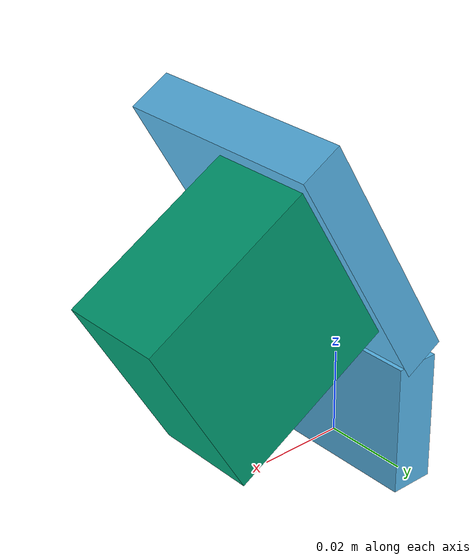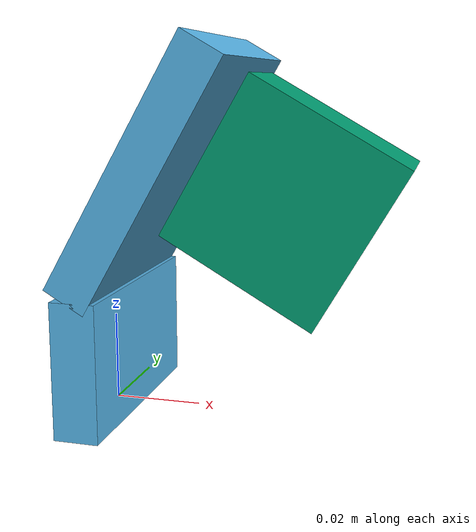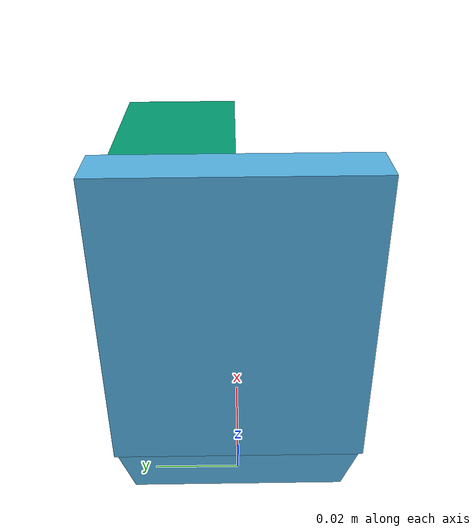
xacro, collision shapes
<?xml version="1.0"?>
<robot name="ARX5 Component $(arg type)" xmlns:xacro="http://www.ros.org/wiki/xacro">
	<xacro:arg name="type" default="d405"/>
	<xacro:arg name="name" default=""/>
	<xacro:arg name="collider" default="simple"/>
	<xacro:property name="PI" value="3.1415926535897931"/>
	<xacro:property name="prefix" value="${'$(arg name)' + '_' if '$(arg name)' else ''}"/>

	<xacro:if value="${'$(arg type)' == 'd405'}">
		<xacro:include filename="$(find arx5_description)/xacro/components/camera.xacro"/>
		<link name="${prefix}base_link"/>
		<xacro:arx_camera_component prefix="${prefix}" camera="d405" collider="$(arg collider)"/>
		<joint name="${prefix}camera_support_fixed" type="fixed">
			<parent link="${prefix}base_link"/>
			<child link="${prefix}camera_support"/>
		</joint>
	</xacro:if>

	<xacro:if value="${'$(arg type)' == 'd435'}">
		<xacro:include filename="$(find arx5_description)/xacro/components/camera.xacro"/>
		<link name="${prefix}base_link"/>
		<xacro:arx_camera_component prefix="${prefix}" camera="d435" collider="$(arg collider)"/>
		<joint name="${prefix}camera_support_fixed" type="fixed">
			<parent link="${prefix}base_link"/>
			<child link="${prefix}camera_support"/>
		</joint>
	</xacro:if>

	<xacro:if value="${'$(arg type)' == 'r5_ee'}">
		<xacro:include filename="$(find arx5_description)/xacro/R5.xacro"/>
		<xacro:R5 name="$(arg name)" collider="$(arg collider)" with_gripper="false"/>
	</xacro:if>

	<xacro:if value="${'$(arg type)' == 'x5_ee'}">
		<xacro:include filename="$(find arx5_description)/xacro/X5.xacro"/>
		<xacro:X5 name="$(arg name)" collider="$(arg collider)" with_gripper="false"/>
	</xacro:if>

	<xacro:if value="${'$(arg type)' == 'ac1_ee'}">
		<xacro:include filename="$(find arx5_description)/xacro/X5_ac1.xacro"/>
		<xacro:X5 name="$(arg name)" collider="$(arg collider)" with_gripper="false"/>
	</xacro:if>

	<xacro:if value="${'$(arg type)' == 'agilex_ee'}">
		<xacro:include filename="$(find arx5_description)/xacro/R5.xacro"/>
		<xacro:R5 name="$(arg name)" style="agilex" collider="$(arg collider)" with_gripper="false"/>
	</xacro:if>
</robot>

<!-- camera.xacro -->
<robot xmlns:xacro="http://www.ros.org/wiki/xacro">
    <xacro:macro name="arx_camera_component" params="prefix camera:=d405 collider:=simple">
        <xacro:if value="${camera == 'none'}">
            <link name="${prefix}camera_support"/>
        </xacro:if>

        <xacro:if value="${camera == 'd405'}">
            <link name="${prefix}camera_support">
                <visual>
                    <geometry>
                        <mesh filename="file://$(find arx5_description)/meshes/camera_stand/stand_d405.glb"/>
                    </geometry>
                </visual>
                <xacro:if value="${collider == 'convex'}">
                    <collision>
                        <geometry>
                            <mesh filename="file://$(find arx5_description)/meshes/camera_stand/stand_d405.glb"/>
                        </geometry>
                    </collision>
                </xacro:if>
                <xacro:if value="${collider == 'simple'}">
                    <collision name="simple_d405_1">
                        <origin xyz="0.0142 0 0.055" rpy="0 ${PI/6} 0"/>
                        <geometry>
                            <box size="0.01 0.05 0.06"/>
                        </geometry>
                    </collision>
                    <collision name="simple_d405_2">
                        <origin xyz="0.001 0 0.014" rpy="0 0 0"/>
                        <geometry>
                            <box size="0.01 0.05 0.03"/>
                        </geometry>
                    </collision>
                </xacro:if>
            </link>
            <link name="${prefix}camera">
                <visual>
                    <geometry>
                        <mesh filename="file://$(find sensor_models)/meshes/realsense/d405.glb"/>
                    </geometry>
                </visual>
                <xacro:if value="${collider == 'convex'}">
                    <collision>
                        <geometry>
                            <mesh filename="file://$(find sensor_models)/meshes/realsense/d405.glb"/>
                        </geometry>
                    </collision>
                </xacro:if>
                <xacro:if value="${collider == 'simple'}">
                    <collision name="simple_d405camera">
                        <origin xyz="-0.0115 0 0" rpy="0 0 0"/>
                        <geometry>
                            <box size="0.0231 0.0421 0.042"/>
                        </geometry>
                    </collision>
                </xacro:if>
            </link>
            <joint name="${prefix}camera_fixed" type="fixed">
                <origin xyz="0.0385 0 0.0475" rpy="-2.093 0 -1.5708"/>
                <parent link="${prefix}camera_support"/>
                <child link="${prefix}camera"/>
            </joint>
        </xacro:if>

        <xacro:if value="${camera == 'd435'}">
            <link name="${prefix}camera_support">
                <visual>
                    <geometry>
                        <mesh filename="file://$(find arx5_description)/meshes/camera_stand/stand_d435.glb"/>
                    </geometry>
                </visual>
                <xacro:if value="${collider == 'convex'}">
                    <collision>
                        <geometry>
                            <mesh filename="file://$(find arx5_description)/meshes/camera_stand/stand_d435.glb"/>
                        </geometry>
                    </collision>
                </xacro:if>
                <xacro:if value="${collider == 'simple'}">
                    <collision name="simple_d435">
                        <origin xyz="0.001 0 0.014" rpy="0 0 0"/>
                        <geometry>
                            <box size="0.01 0.05 0.03"/>
                        </geometry>
                    </collision>
                </xacro:if>
            </link>
            <link name="${prefix}camera">
                <visual>
                    <geometry>
                        <mesh filename="file://$(find sensor_models)/meshes/d435/d435.obj"/>
                    </geometry>
                </visual>
                <xacro:if value="${collider == 'convex'}">
                    <collision>
                        <geometry>
                            <mesh filename="file://$(find sensor_models)/meshes/d435/d435.obj"/>
                        </geometry>
                    </collision>
                </xacro:if>
                <xacro:if value="${collider == 'simple'}">
                    <collision name="simple_d435camera">
                        <origin xyz="-0.0125 0 0" rpy="0 0 0"/>
                        <geometry>
                            <box size="0.0251 0.0899 0.025"/>
                        </geometry>
                    </collision>
                </xacro:if>
            </link>
            <joint name="${prefix}camera_fixed" type="fixed">
                <origin xyz="0.03 0 0.034113"/>
                <parent link="${prefix}camera_support"/>
                <child link="${prefix}camera"/>
            </joint>
        </xacro:if>
    </xacro:macro>
</robot>
